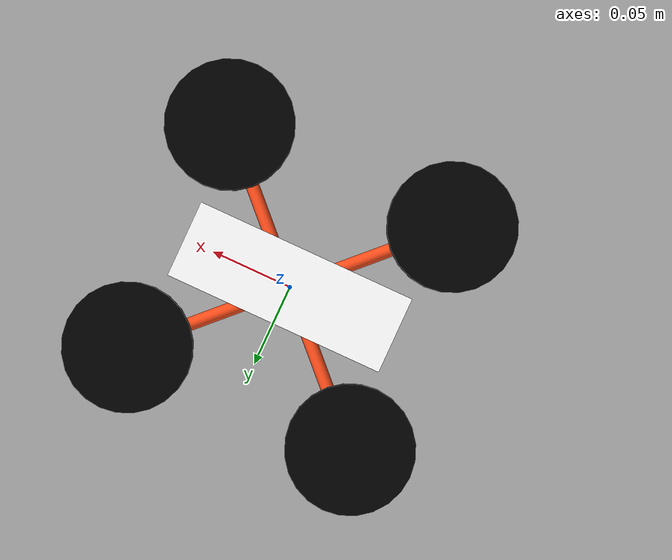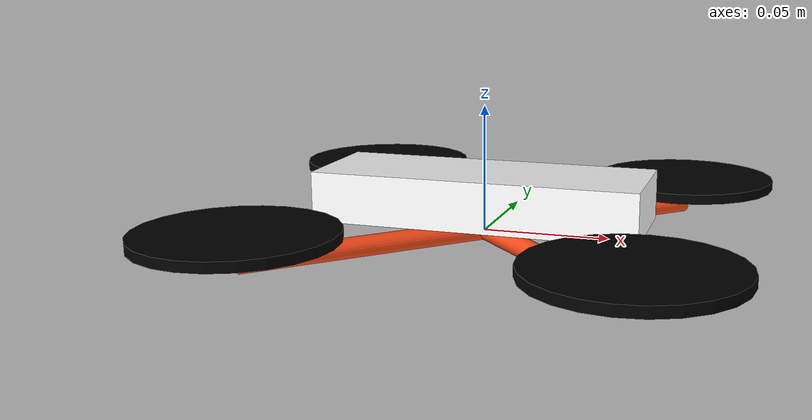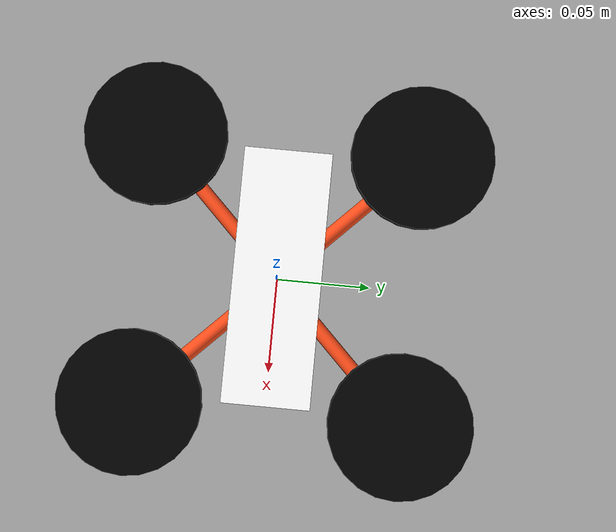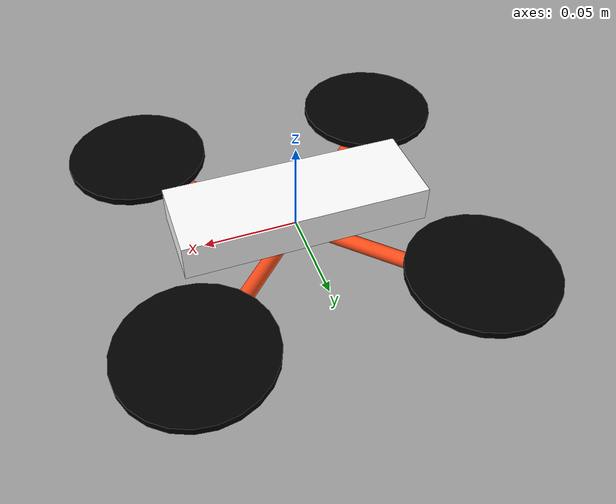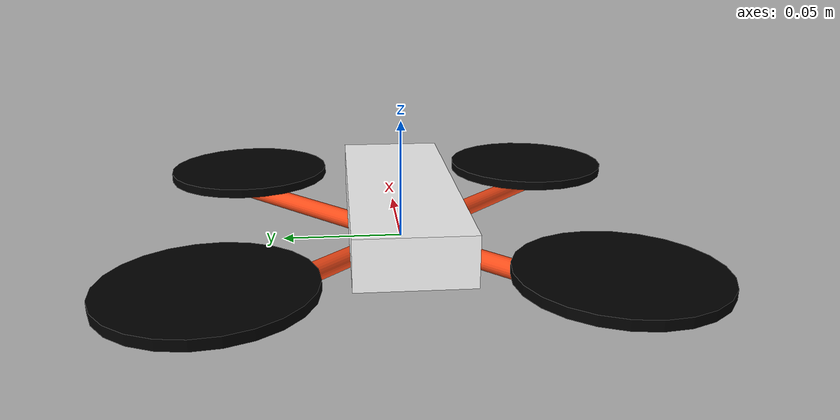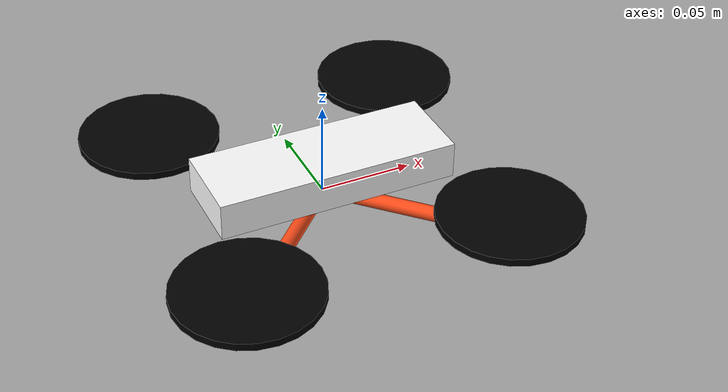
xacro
<?xml version="1.0"?>
<robot xmlns:xacro="http://www.ros.org/wiki/xacro">

    <!-- Include inertia macros -->
    <xacro:include filename="inertia_macros.xacro"/>

    <!--  COMMONLY USED COLORS -->
    <material name="white">
        <color rgba="1 1 1 1"/>
    </material>

    <material name="orange">
        <color rgba="1 0.3 0.1 1" />
    </material>

    <material name="black">
        <color rgba="0 0 0 1" />
    </material>

    <material name="blue">
        <color rgba="0.2 0.2 1 1" />
    </material>

    <material name="red">
        <color rgba="1 0 0 1" />
    </material>

    <!-- BASE LINK -->
    <link name="base_link">
    </link>

    <!-- FRAME -->
    <joint name="frame_joint" type="fixed">
        <parent link="base_link"/>
        <child link="frame_link"/>
        <origin xyz = "0 0 0.024"/>
    </joint>

    <link name="frame_link">
        <visual>

            <geometry>
                <box size="0.13 0.045 0.02"/>
            </geometry>

            <material name="white"/>

            <origin xyz="0 0 -0.01" rpy="0 0 0" />
        </visual>

        <collision>

            <geometry>
                <box size="0.13 0.045 0.02"/>
            </geometry>

            <origin xyz="0 0 -0.01" rpy="0 0 0" />
        </collision>

        <!-- inertia -->
        <xacro:box mass="0.306" x="0.13" y="0.045" z="0.02" origin_xyz="0 0 -0.01" origin_rpy="0 0 0"/>

    </link>

    <gazebo reference="frame_link">
        <material>Gazebo/White</material>
    </gazebo>

    <!-- FRONT LEFT MOTOR ARM -->
    <joint name="fl_motor_joint" type="fixed">
        <parent link="base_link"/>
        <child link="fl_motor"/>
        <origin xyz="0.0707 0.0707 0" rpy="0 0 ${-pi/4 - pi/2}"/>
    </joint>

    <link name="fl_motor">
        <visual>
            <geometry>
                <cylinder length="0.1" radius="0.004"/>
            </geometry>

            <material name="orange"/>

            <origin xyz="0.05 0 0" rpy= "0 1.57 0"/>
        </visual>

        <collision>
            <geometry>
                <cylinder length="0.1" radius="0.004"/>
            </geometry>

            <origin xyz="0.05 0 0" rpy= "0 1.57 0"/>
        </collision>

        <!-- inertia -->
        <xacro:cyl_end_x mass="0.016" r="0.004" l="0.1" origin_xyz="0.0211 0 0" origin_rpy="0 0 0"/>

    </link>

    <gazebo reference="fl_motor">
        <material>Gazebo/Orange</material>
    </gazebo>

    <!-- FRONT RIGHT MOTOR ARM -->
    <joint name="fr_motor_joint" type="fixed">
        <parent link="base_link"/>
        <child link="fr_motor"/>
        <origin xyz="0.0707 -0.0707 0" rpy="0 0 ${pi/4 + pi/2}" />
    </joint>

    <link name="fr_motor">
        <visual>
            <geometry>
                <cylinder length="0.1" radius="0.004"/>
            </geometry>

            <material name="orange"/>

            <origin xyz="0.05 0 0" rpy= "0 1.57 0"/>
        </visual>

        <collision>
            <geometry>
                <cylinder length="0.1" radius="0.004"/>
            </geometry>

            <origin xyz="0.05 0 0" rpy= "0 1.57 0"/>
        </collision>

        <!-- inertia -->
        <xacro:cyl_end_x mass="0.016" r="0.004" l="0.1" origin_xyz="0.0211 0 0" origin_rpy="0 0 0"/>

    </link>

    <gazebo reference="fr_motor">
        <material>Gazebo/Orange</material>
    </gazebo>

    <!-- BACK LEFT MOTOR ARM -->
    <joint name="bl_motor_joint" type="fixed">
        <parent link="base_link"/>
        <child link="bl_motor"/>
        <origin xyz="-0.0707 0.0707 0" rpy="0 0 ${-pi/4}" />
    </joint>

    <link name="bl_motor">
        <visual>
            <geometry>
                <cylinder length="0.1" radius="0.004"/>
            </geometry>

            <material name="orange"/>

            <origin xyz="0.05 0 0" rpy= "0 1.57 0"/>
        </visual>

        <collision>
            <geometry>
                <cylinder length="0.1" radius="0.004"/>
            </geometry>

            <origin xyz="0.05 0.05 0" rpy= "0 1.57 0"/>
        </collision>

        <!-- inertia -->
        <xacro:cyl_end_x mass="0.016" r="0.004" l="0.1" origin_xyz="0.0211 0 0" origin_rpy="0 0 0"/>

    </link>

    <gazebo reference="bl_motor">
        <material>Gazebo/Orange</material>
    </gazebo>

    <!-- BACK RIGHT MOTOR ARM -->
    <joint name="br_motor_joint" type="fixed">
        <parent link="base_link"/>
        <child link="br_motor"/>
        <origin xyz="-0.0707 -0.0707 0" rpy="0 0 ${pi/4}" />
    </joint>

    <link name="br_motor">
        <visual>
            <geometry>
                <cylinder length="0.1" radius="0.004"/>
            </geometry>

            <material name="orange"/>

            <origin xyz="0.05 0 0" rpy= "0 1.57 0"/>
        </visual>

        <collision>
            <geometry>
                <cylinder length="0.1" radius="0.004"/>
            </geometry>

            <origin xyz="0.05 0 0" rpy= "0 1.57 0"/>
        </collision>

        <!-- inertia -->
        <xacro:cyl_end_x mass="0.016" r="0.004" l="0.1" origin_xyz="0.0211 0 0" origin_rpy="0 0 0"/>

    </link>

    <gazebo reference="br_motor">
        <material>Gazebo/Orange</material>
    </gazebo>

    <!-- FRONT LEFT PROPELLER -->
    <joint name="fl_prop_joint" type="continuous">
        <parent link="fl_motor"/>
        <child link="fl_prop"/>
        <origin xyz="0 0 0.01" rpy="0 0 0"/>
        <axis xyz="0 0 1"/>
    </joint>

    <link name="fl_prop">
        <visual>
            <geometry>
                <cylinder length="0.004" radius="0.038"/>
            </geometry>

            <material name="black"/>

            <origin xyz="0 0 0"/>
        </visual>

        <collision>
            <geometry>
                <cylinder length="0.004" radius="0.038"/>
            </geometry>

            <origin xyz="0 0 0"/>
        </collision>

        <!-- inertia -->
        <xacro:cyl_center_z mass="0.003" r="0.038" l="0.004"/>

    </link>

    <gazebo reference="fl_prop">
        <material>Gazebo/Black</material>
    </gazebo>

    <!-- FRONT RIGHT PROPELLER -->
     <joint name="fr_prop_joint" type="continuous">
        <parent link="fr_motor"/>
        <child link="fr_prop"/>
        <origin xyz="0 0 0.01" rpy="0 0 0"/>
        <axis xyz="0 0 -1"/>
    </joint>

    <link name="fr_prop">
        <visual>
            <geometry>
                <cylinder length="0.004" radius="0.038"/>
            </geometry>

            <material name="black"/>

            <origin xyz="0 0 0"/>
        </visual>

        <collision>
            <geometry>
                <cylinder length="0.004" radius="0.038"/>
            </geometry>

            <origin xyz="0 0 0"/>
        </collision>

        <!-- inertia -->
        <xacro:cyl_center_z mass="0.003" r="0.038" l="0.004"/>

    </link>

    <gazebo reference="fr_prop">
        <material>Gazebo/Black</material>
    </gazebo>

    <!-- BACK LEFT PROPELLER -->
     <joint name="bl_prop_joint" type="continuous">
        <parent link="bl_motor"/>
        <child link="bl_prop"/>
        <origin xyz="0 0 0.01" rpy="0 0 0"/>
        <axis xyz="0 0 -1"/>
    </joint>

    <link name="bl_prop">
        <visual>
            <geometry>
                <cylinder length="0.004" radius="0.038"/>
            </geometry>

            <material name="black"/>

            <origin xyz="0 0 0"/>
        </visual>

        <collision>
            <geometry>
                <cylinder length="0.004" radius="0.038"/>
            </geometry>

            <origin xyz="0 0 0"/>
        </collision>

        <!-- inertia -->
        <xacro:cyl_center_z mass="0.003" r="0.038" l="0.004"/>

    </link>

    <gazebo reference="bl_prop">
        <material>Gazebo/Black</material>
    </gazebo>

    <!-- BACK RIGHT PROPELLER -->
     <joint name="br_prop_joint" type="continuous">
        <parent link="br_motor"/>
        <child link="br_prop"/>
        <origin xyz="0 0 0.01" rpy="0 0 0"/>
        <axis xyz="0 0 1"/>
    </joint>

    <link name="br_prop">
        <visual>
            <geometry>
                <cylinder length="0.004" radius="0.038"/>
            </geometry>

            <material name="black"/>

            <origin xyz="0 0 0"/>
        </visual>

        <collision>
            <geometry>
                <cylinder length="0.004" radius="0.038"/>
            </geometry>

            <origin xyz="0 0 0"/>
        </collision>

        <!-- inertia -->
        <xacro:cyl_center_z mass="0.003" r="0.038" l="0.004"/>

    </link>

    <gazebo reference="br_prop">
        <material>Gazebo/Black</material>
    </gazebo>

</robot>

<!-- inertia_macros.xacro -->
<robot xmlns:xacro="http://www.ros.org/wiki/xacro">

    <!-- ################### Box Shape ################### -->
    <xacro:macro name="box" params="mass x y z origin_xyz:='0 0 0' origin_rpy:='0 0 0' ">

        <inertial>
            <mass value="${mass}"/>
            <origin xyz="${origin_xyz}" rpy="${origin_rpy}"/>
            <inertia
                ixx="${(1/12.0)*mass*(y**2 + z**2)}"
                iyy="${(1/12.0)*mass*(x**2 + z**2)}"
                izz="${(1/12.0)*mass*(x**2 + y**2)}"
                ixy="0.0" ixz="0.0" iyz="0.0"
            />
        </inertial>

    </xacro:macro>

    <!--###################CYLINDER SHAPE###################-->

    <!-- ***** LENGTH CENTERED ABOUT X *****-->

    <!-- Formulas based on axes at one end -->
    <xacro:macro name="cyl_end_x" params="mass r l origin_xyz:='0 0 0' origin_rpy:='0 0 0' ">

        <inertial>
            <mass value="${mass}"/>
            <origin xyz="${origin_xyz}" rpy="${origin_rpy}"/>
            <inertia
                ixx="${(1/2)*mass*(r**2)}"
                iyy="${(1/4)*mass*(r**2) + (1/3)*mass*(l**2)}"
                izz="${(1/4)*mass*(r**2) + (1/3)*mass*(l**2)}"
                ixy="0.0" ixz="0.0" iyz="0.0"
            />
        </inertial>

    </xacro:macro>

    <!-- Formulas based on axes at center -->
    <xacro:macro name="cyl_center_x" params="mass r l origin_xyz:='0 0 0' origin_rpy:='0 0 0' ">
        <inertial>
            <mass value="${mass}"/>
            <origin xyz="${origin_xyz}" rpy="${origin_rpy}"/>
            <inertia
                ixx="${(1/2)*mass*(r**2)}"
                iyy="${(1/4)*mass*(r**2) + (1/12)*mass*(l**2)}"
                izz="${(1/4)*mass*(r**2) + (1/12)*mass*(l**2)}"
                ixy="0.0" ixz="0.0" iyz="0.0"
            />
        </inertial>
    </xacro:macro>

    <!-- ***** LENGTH CENTERED ABOUT Z ***** -->

    <!-- Formulas based on axes at one end -->
    <xacro:macro name="cyl_end_z" params="mass r l origin_xyz:='0 0 0' origin_rpy:='0 0 0' ">

        <inertial>
            <mass value="${mass}"/>
            <origin xyz="${origin_xyz}" rpy="${origin_rpy}"/>
            <inertia
                ixx="${(1/4)*mass*(r**2) + (1/3)*mass*(l**2)}"
                iyy="${(1/4)*mass*(r**2) + (1/3)*mass*(l**2)}"
                izz="${(1/2)*mass*(r**2)}"
                ixy="0.0" ixz="0.0" iyz="0.0"
            />
        </inertial>

    </xacro:macro>

    <!-- Formulas based on axes at center -->
    <xacro:macro name="cyl_center_z" params="mass r l origin_xyz:='0 0 0' origin_rpy:='0 0 0' ">
        <inertial>
            <mass value="${mass}"/>
            <origin xyz="${origin_xyz}" rpy="${origin_rpy}"/>
            <inertia
                ixx="${(1/4)*mass*(r**2) + (1/12)*mass*(l**2)}"
                iyy="${(1/4)*mass*(r**2) + (1/12)*mass*(l**2)}"
                izz="${(1/2)*mass*(r**2)}"
                ixy="0.0" ixz="0.0" iyz="0.0"
            />
        </inertial>
    </xacro:macro>

    <!-- ################### Sphere Shape ################### -->
    <xacro:macro name="solid_sphere" params="mass r origin_xyz:='0 0 0' origin_rpy:='0 0 0' ">
        <inertial>
            <mass value="${mass}"/>
            <origin xyz="${origin_xyz}" rpy="${origin_rpy}"/>
            <inertia
                ixx="${(2/5)*mass*(r**2)}"
                iyy="${(2/5)*mass*(r**2)}"
                izz="${(2/5)*mass*(r**2)}"
                ixy="0.0" ixz="0.0" iyz="0.0"
            />
        </inertial>
    </xacro:macro>

    <!-- ################### Thin Rod Shape ################### -->

    <!-- ***** LENGTH CENTERED ABOUT X *****-->

    <!-- Formulas based on axes at center -->
    <xacro:macro name="thin_rod_center_x" params="mass r l origin_xyz:='0 0 0' origin_rpy:='0 0 0' ">
        <inertial>
            <mass value="${mass}"/>
            <origin xyz="${origin_xyz}" rpy="${origin_rpy}"/>
            <inertia
                ixx="${(1/2)*mass*(r**2)}"
                iyy="${(1/12)*mass*(l**2)}"
                izz="${(1/12)*mass*(l**2)}"
                ixy="0.0" ixz="0.0" iyz="0.0"
            />
        </inertial>
    </xacro:macro>

    <!-- Thin Rod Shape -->
    <!-- Formulas based on axes at end -->
    <xacro:macro name="thin_rod_end_x" params="mass r l origin_xyz:='0 0 0' origin_rpy:='0 0 0' ">
        <inertial>
            <mass value="${mass}"/>
            <origin xyz="${origin_xyz}" rpy="${origin_rpy}"/>
            <inertia
                ixx="${(1/2)*mass*(r**2)}"
                iyy="${(1/3)*mass*(l**2)}"
                izz="${(1/3)*mass*(l**2)}"
                ixy="0.0" ixz="0.0" iyz="0.0"
            />
        </inertial>
    </xacro:macro>

    <!-- ***** LENGTH CENTERED ABOUT Z *****-->

    <!-- Formulas based on axes at center -->
    <xacro:macro name="thin_rod_center_z" params="mass r l origin_xyz:='0 0 0' origin_rpy:='0 0 0' ">
        <inertial>
            <mass value="${mass}"/>
            <origin xyz="${origin_xyz}" rpy="${origin_rpy}"/>
            <inertia
                ixx="${(1/12)*mass*(l**2)}"
                iyy="${(1/12)*mass*(l**2)}"
                izz="${(1/2)*mass*(r**2)}"
                ixy="0.0" ixz="0.0" iyz="0.0"
            />
        </inertial>
    </xacro:macro>

    <!-- Thin Rod Shape -->
    <!-- Formulas based on axes at end -->
    <xacro:macro name="thin_rod_end_z" params="mass r l origin_xyz:='0 0 0' origin_rpy:='0 0 0' ">
        <inertial>
            <mass value="${mass}"/>
            <origin xyz="${origin_xyz}" rpy="${origin_rpy}"/>
            <inertia
                ixx="${(1/3)*mass*(l**2)}"
                iyy="${(1/3)*mass*(l**2)}"
                izz="${(1/2)*mass*(r**2)}"
                ixy="0.0" ixz="0.0" iyz="0.0"
            />
        </inertial>
    </xacro:macro>

</robot>
